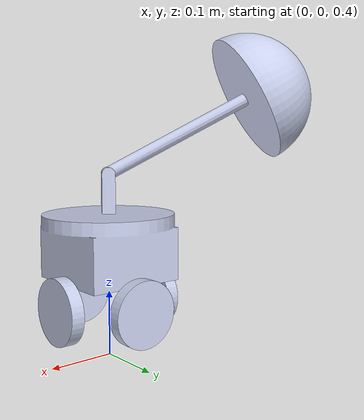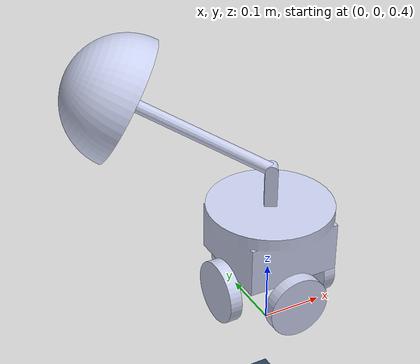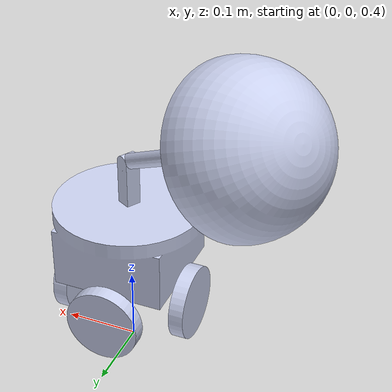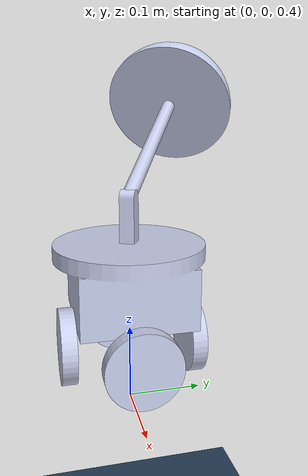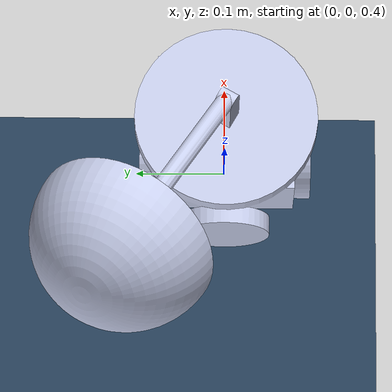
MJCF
<mujoco model="bb8_car">
  <compiler angle="radian"/>

  <asset>
    <mesh name="base_link" content_type="model/stl" file="base_link.STL"/>
    <mesh name="a1" content_type="model/stl" file="a1.STL"/>
    <mesh name="a2" content_type="model/stl" file="a2.STL"/>
    <mesh name="h" content_type="model/stl" file="h.STL"/>
    <mesh name="w1" content_type="model/stl" file="w1.STL"/>
    <mesh name="w2" content_type="model/stl" file="w2.STL"/>
    <mesh name="w3" content_type="model/stl" file="w3.STL"/>
    <mesh name="w4" content_type="model/stl" file="w4.STL"/>
    <texture name="grid" type="2d" builtin="checker" rgb1=".1 .2 .3" rgb2=".2 .3 .4" width="300" height="300"/>
    <material name="grid" texture="grid" texrepeat="8 8" reflectance=".2"/>
  </asset>

  <worldbody>
    <light name="top" pos="0 0 20"/>
    <geom name="floor" type="plane" pos="0 0 0" size="5 5 0.1" material="grid" contype="1" conaffinity="1"/>
    <body name="base_link" pos="0 0 0.6" quat="-0.707107 0.707107 0 0">
    <freejoint />
      <camera name="track_com" pos="1.253 -1.502 0.378" xyaxes="0.768 0.641 0.000 -0.101 0.122 0.987" mode="trackcom"/>
      <inertial pos="-4.4409E-16 0.027063 -3.3307E-16" quat="0 0 0 1" mass="2.4283" diaginertia="0.0059267 0.0098916 0.0059267"/>

      <geom type="mesh" rgba="0.79216 0.81961 0.93333 1" mesh="base_link"/>

      <body name="a1" pos="0 -0.02 0" quat="0.356335 0.356338 0.610757 -0.610757">
        <inertial pos="0 0 0.033964" quat="0.707107 0 0 0.707107" mass="0.027142" diaginertia="5.8419e-06 5.8158e-06 1.7833e-06"/>
        <joint name="a1" pos="0 0 0" axis="0 0 -1"/>
        <geom type="mesh" rgba="0.79216 0.81961 0.93333 1" mesh="a1"/>
        <body name="a2" pos="0 0 0.06" quat="-3.1459e-06 1.89624e-06 0.516236 -0.856446">
          <inertial pos="4.0307e-08 1.6883e-08 0.12424" quat="0.999977 0 0 0.0067613" mass="0.072732" diaginertia="0.00032679 0.00032678 3.6454e-06"/>
          <joint name="a2" pos="0 0 0" axis="1 0 0"/>
          <geom type="mesh" rgba="0.79216 0.81961 0.93333 1" mesh="a2"/>
          <body name="h" pos="0 0 0.34" quat="0.51312 0.486525 0.513122 -0.486527">
            <inertial pos="0.0625 0 0" mass="0.5" diaginertia="0.0083776 0.0054323 0.0054323"/>
            <joint name="h" pos="0 0 0" axis="-1 0 0"/>
            <geom type="mesh" rgba="0.79216 0.81961 0.93333 1" mesh="h"/>
          </body>
        </body>
      </body>
      <body name="w1" pos="-0.095 0.117 0" quat="0.499998 0.5 -0.5 0.500002">
        <inertial pos="0 -0.01 0" quat="0.707107 0 0 0.707107" mass="0.15708" diaginertia="0.00019635 0.00010341 0.00010341"/>
        <joint name="w1" pos="0 0 0" axis="0 1 0"/>
        <geom type="mesh" rgba="0.79216 0.81961 0.93333 1" mesh="w1"/>
      </body>
      <body name="w2" pos="0 0.117 -0.095" quat="0.499998 0.5 -0.5 0.500002">
        <inertial pos="0.01 0 0" mass="0.15708" diaginertia="0.00019635 0.00010341 0.00010341"/>
        <joint name="w2" pos="0 0 0" axis="-1 0 0"/>
        <geom type="mesh" rgba="0.79216 0.81961 0.93333 1" mesh="w2"/>
      </body>
      <body name="w3" pos="0.095 0.117 0" quat="0.499998 0.5 -0.5 0.500002">
        <inertial pos="0 0.01 0" quat="0.707107 0 0 0.707107" mass="0.15708" diaginertia="0.00019635 0.00010341 0.00010341"/>
        <joint name="w3" pos="0 0 0" axis="0 -1 0"/>
        <geom type="mesh" rgba="0.79216 0.81961 0.93333 1" mesh="w3"/>
      </body>
      <body name="w4" pos="0 0.117 0.095" quat="0.499998 0.5 -0.5 0.500002">
        <inertial pos="-0.01 0 0" mass="0.15708" diaginertia="0.00019635 0.00010341 0.00010341"/>
        <joint name="w4" pos="0 0 0" axis="1 0 0"/>
        <geom type="mesh" rgba="0.79216 0.81961 0.93333 1" mesh="w4"/>
      </body>
    </body>
  </worldbody>

  <actuator>
    <position name="a1_motor" joint="a1" kp="5" kv="1" ctrlrange="-3.14 3.14"/>
    <position name="a2_motor" joint="a2" kp="2" kv="1" ctrlrange="-3.14 3.14"/>
    <position name="h_motor" joint="h" kp="5" kv="1" ctrlrange="-3.14 3.14"/>
  </actuator>
</mujoco>
